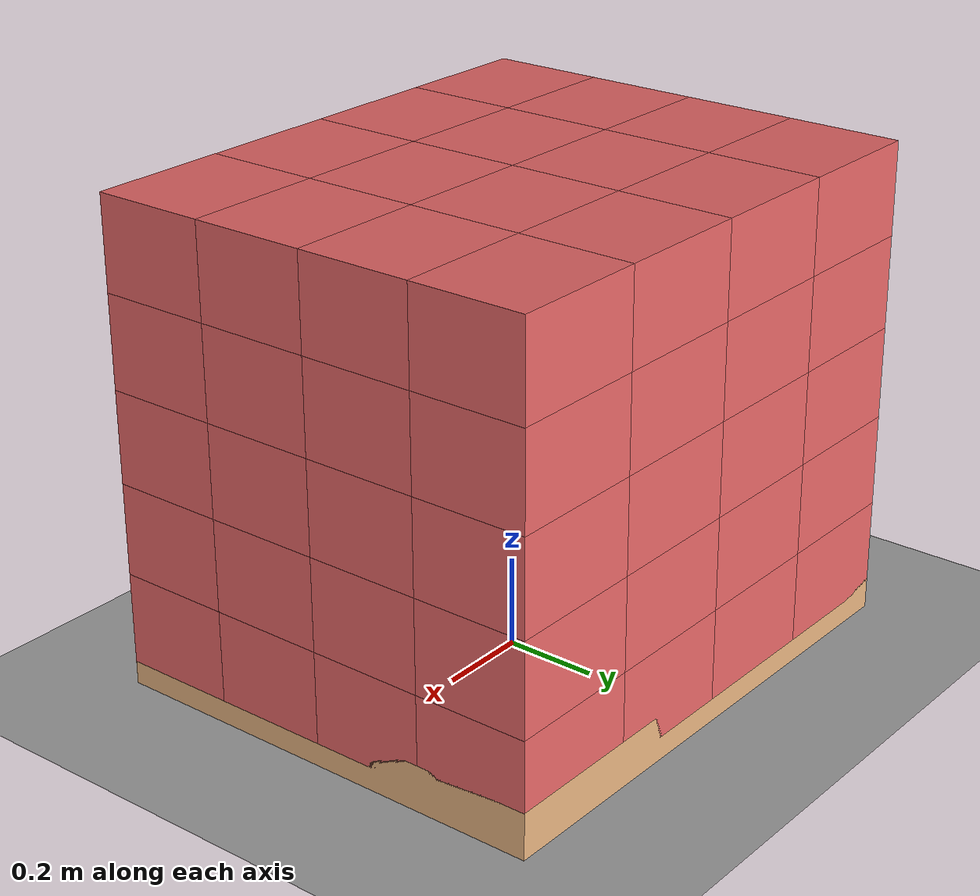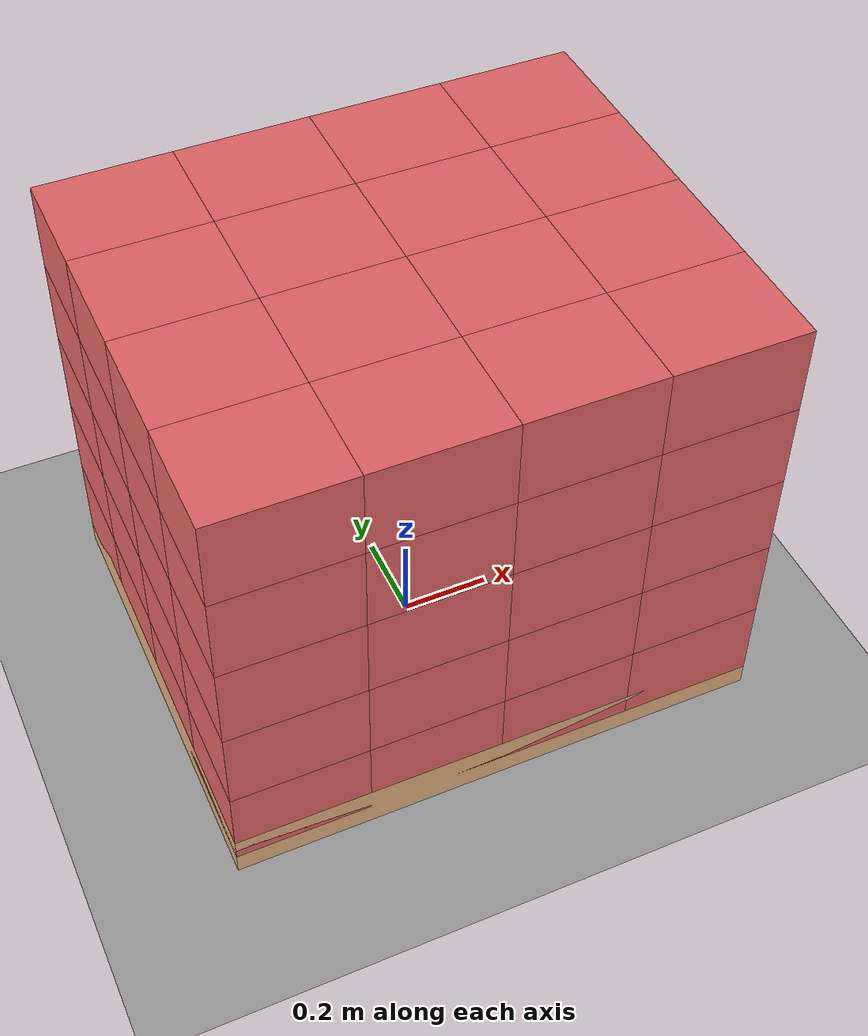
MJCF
<?xml version="1.0" ?>
<mujoco model="pallet_bricks_column">
  <!-- derive inertia from geometry -->
  <compiler angle="degree" inertiafromgeom="true"/>

  <!-- define textures and materials -->
  <asset>
    <!-- checkerboard texture -->
    <texture name="checker" type="2d" builtin="checker"
             rgb1="0.95 0.95 0.95" rgb2="0.3 0.3 0.3"
             width="512" height="512"/>
    <!-- floor uses checker -->
    <material name="floor_mat"
              texture="checker"
              texrepeat="10 10"
              specular="0.3"
              shininess="0.7"
              reflectance="0.2"/>
    <!-- bricks stay red -->
    <material name="brick_mat"
              rgba="0.9 0.4 0.4 1"
              specular="0.3"
              shininess="0.7"/>
    <!-- new light‑brown pallet -->
    <material name="pallet_mat"
              rgba="0.9 0.7 0.5 1"
              specular="0.3"
              shininess="0.7"/>
  </asset>

  <!-- physics options -->
  <option gravity="0 0 -9.81"/>

  <worldbody>
    <!-- renamed default camera -->
    <camera name="camera"
            pos="0 -12 8"
            euler="50 0 0"/>

    <!-- Add additional lights -->
    <light name="light1" pos="0 0 10" dir="0 0 -1" diffuse="0.8 0.8 0.8" specular="0.8 0.8 0.8"/>
    <light name="light2" pos="10 0 5" dir="-1 0 -0.5" diffuse="0.6 0.6 0.6" specular="0.6 0.6 0.6"/>
    <light name="light3" pos="-10 0 5" dir="1 0 -0.5" diffuse="0.6 0.6 0.6" specular="0.6 0.6 0.6"/>

    <!-- ground plane with checkerboard -->
    <geom name="floor"
          type="plane"
          pos="0 0 0"
          size="10 10 0.1"
          material="floor_mat"/>

    <body name="pallet"
          pos="0 0 0.05">
  <joint name="pallet_slide_x" type="slide" axis="1 0 0"/>
  <joint name="pallet_slide_y" type="slide" axis="0 1 0"/>
  <joint name="pallet_hinge_z" type="hinge" axis="0 0 1"/>
        <geom name="pallet_geom"
            type="box"
            size="0.6 0.5 0.05"
            density="1250"
            friction="2.0 2.0 0.002"
            material="pallet_mat"/>
    </body>

    <body name="brick_0_0_0" pos="-0.45 -0.375 0.15">
      <joint name="brick_0_0_free" type="free"/>
      <geom type="box" size="0.15 0.125 0.10"
            density="7935" friction="1.0 0.1 0.001"
            material="brick_mat"/>
    </body>
    <body name="brick_0_0_1" pos="-0.15 -0.375 0.15">
      <joint name="brick_0_1_free" type="free"/>
      <geom type="box" size="0.15 0.125 0.10"
            density="7935" friction="1.0 0.1 0.001"
            material="brick_mat"/>
    </body>
    <body name="brick_0_0_2" pos="0.15 -0.375 0.15">
      <joint name="brick_0_2_free" type="free"/>
      <geom type="box" size="0.15 0.125 0.10"
            density="7935" friction="1.0 0.1 0.001"
            material="brick_mat"/>
    </body>
    <body name="brick_0_0_3" pos="0.45 -0.375 0.15">
      <joint name="brick_0_3_free" type="free"/>
      <geom type="box" size="0.15 0.125 0.10"
            density="7935" friction="1.0 0.1 0.001"
            material="brick_mat"/>
    </body>
    <body name="brick_0_1_0" pos="-0.45 -0.125 0.15">
      <joint name="brick_0_4_free" type="free"/>
      <geom type="box" size="0.15 0.125 0.10"
            density="7935" friction="1.0 0.1 0.001"
            material="brick_mat"/>
    </body>
    <body name="brick_0_1_1" pos="-0.15 -0.125 0.15">
      <joint name="brick_0_5_free" type="free"/>
      <geom type="box" size="0.15 0.125 0.10"
            density="7935" friction="1.0 0.1 0.001"
            material="brick_mat"/>
    </body>
    <body name="brick_0_1_2" pos="0.15 -0.125 0.15">
      <joint name="brick_0_6_free" type="free"/>
      <geom type="box" size="0.15 0.125 0.10"
            density="7935" friction="1.0 0.1 0.001"
            material="brick_mat"/>
    </body>
    <body name="brick_0_1_3" pos="0.45 -0.125 0.15">
      <joint name="brick_0_7_free" type="free"/>
      <geom type="box" size="0.15 0.125 0.10"
            density="7935" friction="1.0 0.1 0.001"
            material="brick_mat"/>
    </body>
    <body name="brick_0_2_0" pos="-0.45 0.125 0.15">
      <joint name="brick_0_8_free" type="free"/>
      <geom type="box" size="0.15 0.125 0.10"
            density="7935" friction="1.0 0.1 0.001"
            material="brick_mat"/>
    </body>
    <body name="brick_0_2_1" pos="-0.15 0.125 0.15">
      <joint name="brick_0_9_free" type="free"/>
      <geom type="box" size="0.15 0.125 0.10"
            density="7935" friction="1.0 0.1 0.001"
            material="brick_mat"/>
    </body>
    <body name="brick_0_2_2" pos="0.15 0.125 0.15">
      <joint name="brick_0_10_free" type="free"/>
      <geom type="box" size="0.15 0.125 0.10"
            density="7935" friction="1.0 0.1 0.001"
            material="brick_mat"/>
    </body>
    <body name="brick_0_2_3" pos="0.45 0.125 0.15">
      <joint name="brick_0_11_free" type="free"/>
      <geom type="box" size="0.15 0.125 0.10"
            density="7935" friction="1.0 0.1 0.001"
            material="brick_mat"/>
    </body>
    <body name="brick_0_3_0" pos="-0.45 0.375 0.15">
      <joint name="brick_0_12_free" type="free"/>
      <geom type="box" size="0.15 0.125 0.10"
            density="7935" friction="1.0 0.1 0.001"
            material="brick_mat"/>
    </body>
    <body name="brick_0_3_1" pos="-0.15 0.375 0.15">
      <joint name="brick_0_13_free" type="free"/>
      <geom type="box" size="0.15 0.125 0.10"
            density="7935" friction="1.0 0.1 0.001"
            material="brick_mat"/>
    </body>
    <body name="brick_0_3_2" pos="0.15 0.375 0.15">
      <joint name="brick_0_14_free" type="free"/>
      <geom type="box" size="0.15 0.125 0.10"
            density="7935" friction="1.0 0.1 0.001"
            material="brick_mat"/>
    </body>
    <body name="brick_0_3_3" pos="0.45 0.375 0.15">
      <joint name="brick_0_15_free" type="free"/>
      <geom type="box" size="0.15 0.125 0.10"
            density="7935" friction="1.0 0.1 0.001"
            material="brick_mat"/>
    </body>

    <!-- Layer 1 -->
    <body name="brick_1_0_0" pos="-0.45 -0.375 0.35">
      <joint name="brick_1_0_free" type="free"/>
      <geom type="box" size="0.15 0.125 0.10"
            density="7935" friction="1.0 0.1 0.001"
            material="brick_mat"/>
    </body>
    <body name="brick_1_0_1" pos="-0.15 -0.375 0.35">
      <joint name="brick_1_1_free" type="free"/>
      <geom type="box" size="0.15 0.125 0.10"
            density="7935" friction="1.0 0.1 0.001"
            material="brick_mat"/>
    </body>
    <body name="brick_1_0_2" pos="0.15 -0.375 0.35">
      <joint name="brick_1_2_free" type="free"/>
      <geom type="box" size="0.15 0.125 0.10"
            density="7935" friction="1.0 0.1 0.001"
            material="brick_mat"/>
    </body>
    <body name="brick_1_0_3" pos="0.45 -0.375 0.35">
      <joint name="brick_1_3_free" type="free"/>
      <geom type="box" size="0.15 0.125 0.10"
            density="7935" friction="1.0 0.1 0.001"
            material="brick_mat"/>
    </body>
    <body name="brick_1_1_0" pos="-0.45 -0.125 0.35">
      <joint name="brick_1_4_free" type="free"/>
      <geom type="box" size="0.15 0.125 0.10"
            density="7935" friction="1.0 0.1 0.001"
            material="brick_mat"/>
    </body>
    <body name="brick_1_1_1" pos="-0.15 -0.125 0.35">
      <joint name="brick_1_5_free" type="free"/>
      <geom type="box" size="0.15 0.125 0.10"
            density="7935" friction="1.0 0.1 0.001"
            material="brick_mat"/>
    </body>
    <body name="brick_1_1_2" pos="0.15 -0.125 0.35">
      <joint name="brick_1_6_free" type="free"/>
      <geom type="box" size="0.15 0.125 0.10"
            density="7935" friction="1.0 0.1 0.001"
            material="brick_mat"/>
    </body>
    <body name="brick_1_1_3" pos="0.45 -0.125 0.35">
      <joint name="brick_1_7_free" type="free"/>
      <geom type="box" size="0.15 0.125 0.10"
            density="7935" friction="1.0 0.1 0.001"
            material="brick_mat"/>
    </body>
    <body name="brick_1_2_0" pos="-0.45 0.125 0.35">
      <joint name="brick_1_8_free" type="free"/>
      <geom type="box" size="0.15 0.125 0.10"
            density="7935" friction="1.0 0.1 0.001"
            material="brick_mat"/>
    </body>
    <body name="brick_1_2_1" pos="-0.15 0.125 0.35">
      <joint name="brick_1_9_free" type="free"/>
      <geom type="box" size="0.15 0.125 0.10"
            density="7935" friction="1.0 0.1 0.001"
            material="brick_mat"/>
    </body>
    <body name="brick_1_2_2" pos="0.15 0.125 0.35">
      <joint name="brick_1_10_free" type="free"/>
      <geom type="box" size="0.15 0.125 0.10"
            density="7935" friction="1.0 0.1 0.001"
            material="brick_mat"/>
    </body>
    <body name="brick_1_2_3" pos="0.45 0.125 0.35">
      <joint name="brick_1_11_free" type="free"/>
      <geom type="box" size="0.15 0.125 0.10"
            density="7935" friction="1.0 0.1 0.001"
            material="brick_mat"/>
    </body>
    <body name="brick_1_3_0" pos="-0.45 0.375 0.35">
      <joint name="brick_1_12_free" type="free"/>
      <geom type="box" size="0.15 0.125 0.10"
            density="7935" friction="1.0 0.1 0.001"
            material="brick_mat"/>
    </body>
    <body name="brick_1_3_1" pos="-0.15 0.375 0.35">
      <joint name="brick_1_13_free" type="free"/>
      <geom type="box" size="0.15 0.125 0.10"
            density="7935" friction="1.0 0.1 0.001"
            material="brick_mat"/>
    </body>
    <body name="brick_1_3_2" pos="0.15 0.375 0.35">
      <joint name="brick_1_14_free" type="free"/>
      <geom type="box" size="0.15 0.125 0.10"
            density="7935" friction="1.0 0.1 0.001"
            material="brick_mat"/>
    </body>
    <body name="brick_1_3_3" pos="0.45 0.375 0.35">
      <joint name="brick_1_15_free" type="free"/>
      <geom type="box" size="0.15 0.125 0.10"
            density="7935" friction="1.0 0.1 0.001"
            material="brick_mat"/>
    </body>

    <!-- Layer 2 -->
    <body name="brick_2_0_0" pos="-0.45 -0.375 0.55">
      <joint name="brick_2_0_free" type="free"/>
      <geom type="box" size="0.15 0.125 0.10"
            density="7935" friction="1.0 0.1 0.001"
            material="brick_mat"/>
    </body>
    <body name="brick_2_0_1" pos="-0.15 -0.375 0.55">
      <joint name="brick_2_1_free" type="free"/>
      <geom type="box" size="0.15 0.125 0.10"
            density="7935" friction="1.0 0.1 0.001"
            material="brick_mat"/>
    </body>
    <body name="brick_2_0_2" pos="0.15 -0.375 0.55">
      <joint name="brick_2_2_free" type="free"/>
      <geom type="box" size="0.15 0.125 0.10"
            density="7935" friction="1.0 0.1 0.001"
            material="brick_mat"/>
    </body>
    <body name="brick_2_0_3" pos="0.45 -0.375 0.55">
      <joint name="brick_2_3_free" type="free"/>
      <geom type="box" size="0.15 0.125 0.10"
            density="7935" friction="1.0 0.1 0.001"
            material="brick_mat"/>
    </body>
    <body name="brick_2_1_0" pos="-0.45 -0.125 0.55">
      <joint name="brick_2_4_free" type="free"/>
      <geom type="box" size="0.15 0.125 0.10"
            density="7935" friction="1.0 0.1 0.001"
            material="brick_mat"/>
    </body>
    <body name="brick_2_1_1" pos="-0.15 -0.125 0.55">
      <joint name="brick_2_5_free" type="free"/>
      <geom type="box" size="0.15 0.125 0.10"
            density="7935" friction="1.0 0.1 0.001"
            material="brick_mat"/>
    </body>
    <body name="brick_2_1_2" pos="0.15 -0.125 0.55">
      <joint name="brick_2_6_free" type="free"/>
      <geom type="box" size="0.15 0.125 0.10"
            density="7935" friction="1.0 0.1 0.001"
            material="brick_mat"/>
    </body>
    <body name="brick_2_1_3" pos="0.45 -0.125 0.55">
      <joint name="brick_2_7_free" type="free"/>
      <geom type="box" size="0.15 0.125 0.10"
            density="7935" friction="1.0 0.1 0.001"
            material="brick_mat"/>
    </body>
    <body name="brick_2_2_0" pos="-0.45 0.125 0.55">
      <joint name="brick_2_8_free" type="free"/>
      <geom type="box" size="0.15 0.125 0.10"
            density="7935" friction="1.0 0.1 0.001"
            material="brick_mat"/>
    </body>
    <body name="brick_2_2_1" pos="-0.15 0.125 0.55">
      <joint name="brick_2_9_free" type="free"/>
      <geom type="box" size="0.15 0.125 0.10"
            density="7935" friction="1.0 0.1 0.001"
            material="brick_mat"/>
    </body>
    <body name="brick_2_2_2" pos="0.15 0.125 0.55">
      <joint name="brick_2_10_free" type="free"/>
      <geom type="box" size="0.15 0.125 0.10"
            density="7935" friction="1.0 0.1 0.001"
            material="brick_mat"/>
    </body>
    <body name="brick_2_2_3" pos="0.45 0.125 0.55">
      <joint name="brick_2_11_free" type="free"/>
      <geom type="box" size="0.15 0.125 0.10"
            density="7935" friction="1.0 0.1 0.001"
            material="brick_mat"/>
    </body>
    <body name="brick_2_3_0" pos="-0.45 0.375 0.55">
      <joint name="brick_2_12_free" type="free"/>
      <geom type="box" size="0.15 0.125 0.10"
            density="7935" friction="1.0 0.1 0.001"
            material="brick_mat"/>
    </body>
    <body name="brick_2_3_1" pos="-0.15 0.375 0.55">
      <joint name="brick_2_13_free" type="free"/>
      <geom type="box" size="0.15 0.125 0.10"
            density="7935" friction="1.0 0.1 0.001"
            material="brick_mat"/>
    </body>
    <body name="brick_2_3_2" pos="0.15 0.375 0.55">
      <joint name="brick_2_14_free" type="free"/>
      <geom type="box" size="0.15 0.125 0.10"
            density="7935" friction="1.0 0.1 0.001"
            material="brick_mat"/>
    </body>
    <body name="brick_2_3_3" pos="0.45 0.375 0.55">
      <joint name="brick_2_15_free" type="free"/>
      <geom type="box" size="0.15 0.125 0.10"
            density="7935" friction="1.0 0.1 0.001"
            material="brick_mat"/>
    </body>

    <!-- Layer 3 -->
    <body name="brick_3_0_0" pos="-0.45 -0.375 0.75">
      <joint name="brick_3_0_free" type="free"/>
      <geom type="box" size="0.15 0.125 0.10"
            density="7935" friction="1.0 0.1 0.001"
            material="brick_mat"/>
    </body>
    <body name="brick_3_0_1" pos="-0.15 -0.375 0.75">
      <joint name="brick_3_1_free" type="free"/>
      <geom type="box" size="0.15 0.125 0.10"
            density="7935" friction="1.0 0.1 0.001"
            material="brick_mat"/>
    </body>
    <body name="brick_3_0_2" pos="0.15 -0.375 0.75">
      <joint name="brick_3_2_free" type="free"/>
      <geom type="box" size="0.15 0.125 0.10"
            density="7935" friction="1.0 0.1 0.001"
            material="brick_mat"/>
    </body>
    <body name="brick_3_0_3" pos="0.45 -0.375 0.75">
      <joint name="brick_3_3_free" type="free"/>
      <geom type="box" size="0.15 0.125 0.10"
            density="7935" friction="1.0 0.1 0.001"
            material="brick_mat"/>
    </body>
    <body name="brick_3_1_0" pos="-0.45 -0.125 0.75">
      <joint name="brick_3_4_free" type="free"/>
      <geom type="box" size="0.15 0.125 0.10"
            density="7935" friction="1.0 0.1 0.001"
            material="brick_mat"/>
    </body>
    <body name="brick_3_1_1" pos="-0.15 -0.125 0.75">
      <joint name="brick_3_5_free" type="free"/>
      <geom type="box" size="0.15 0.125 0.10"
            density="7935" friction="1.0 0.1 0.001"
            material="brick_mat"/>
    </body>
    <body name="brick_3_1_2" pos="0.15 -0.125 0.75">
      <joint name="brick_3_6_free" type="free"/>
      <geom type="box" size="0.15 0.125 0.10"
            density="7935" friction="1.0 0.1 0.001"
            material="brick_mat"/>
    </body>
    <body name="brick_3_1_3" pos="0.45 -0.125 0.75">
      <joint name="brick_3_7_free" type="free"/>
      <geom type="box" size="0.15 0.125 0.10"
            density="7935" friction="1.0 0.1 0.001"
            material="brick_mat"/>
    </body>
    <body name="brick_3_2_0" pos="-0.45 0.125 0.75">
      <joint name="brick_3_8_free" type="free"/>
      <geom type="box" size="0.15 0.125 0.10"
            density="7935" friction="1.0 0.1 0.001"
            material="brick_mat"/>
    </body>
    <body name="brick_3_2_1" pos="-0.15 0.125 0.75">
      <joint name="brick_3_9_free" type="free"/>
      <geom type="box" size="0.15 0.125 0.10"
            density="7935" friction="1.0 0.1 0.001"
            material="brick_mat"/>
    </body>
    <body name="brick_3_2_2" pos="0.15 0.125 0.75">
      <joint name="brick_3_10_free" type="free"/>
      <geom type="box" size="0.15 0.125 0.10"
            density="7935" friction="1.0 0.1 0.001"
            material="brick_mat"/>
    </body>
    <body name="brick_3_2_3" pos="0.45 0.125 0.75">
      <joint name="brick_3_11_free" type="free"/>
      <geom type="box" size="0.15 0.125 0.10"
            density="7935" friction="1.0 0.1 0.001"
            material="brick_mat"/>
    </body>
    <body name="brick_3_3_0" pos="-0.45 0.375 0.75">
      <joint name="brick_3_12_free" type="free"/>
      <geom type="box" size="0.15 0.125 0.10"
            density="7935" friction="1.0 0.1 0.001"
            material="brick_mat"/>
    </body>
    <body name="brick_3_3_1" pos="-0.15 0.375 0.75">
      <joint name="brick_3_13_free" type="free"/>
      <geom type="box" size="0.15 0.125 0.10"
            density="7935" friction="1.0 0.1 0.001"
            material="brick_mat"/>
    </body>
    <body name="brick_3_3_2" pos="0.15 0.375 0.75">
      <joint name="brick_3_14_free" type="free"/>
      <geom type="box" size="0.15 0.125 0.10"
            density="7935" friction="1.0 0.1 0.001"
            material="brick_mat"/>
    </body>
    <body name="brick_3_3_3" pos="0.45 0.375 0.75">
      <joint name="brick_3_15_free" type="free"/>
      <geom type="box" size="0.15 0.125 0.10"
            density="7935" friction="1.0 0.1 0.001"
            material="brick_mat"/>
    </body>

    <!-- Layer 4 -->
    <body name="brick_4_0_0" pos="-0.45 -0.375 0.95">
      <joint name="brick_4_0_free" type="free"/>
      <geom type="box" size="0.15 0.125 0.10"
            density="7935" friction="1.0 0.1 0.001"
            material="brick_mat"/>
    </body>
    <body name="brick_4_0_1" pos="-0.15 -0.375 0.95">
      <joint name="brick_4_1_free" type="free"/>
      <geom type="box" size="0.15 0.125 0.10"
            density="7935" friction="1.0 0.1 0.001"
            material="brick_mat"/>
    </body>
    <body name="brick_4_0_2" pos="0.15 -0.375 0.95">
      <joint name="brick_4_2_free" type="free"/>
      <geom type="box" size="0.15 0.125 0.10"
            density="7935" friction="1.0 0.1 0.001"
            material="brick_mat"/>
    </body>
    <body name="brick_4_0_3" pos="0.45 -0.375 0.95">
      <joint name="brick_4_3_free" type="free"/>
      <geom type="box" size="0.15 0.125 0.10"
            density="7935" friction="1.0 0.1 0.001"
            material="brick_mat"/>
    </body>
    <body name="brick_4_1_0" pos="-0.45 -0.125 0.95">
      <joint name="brick_4_4_free" type="free"/>
      <geom type="box" size="0.15 0.125 0.10"
            density="7935" friction="1.0 0.1 0.001"
            material="brick_mat"/>
    </body>
    <body name="brick_4_1_1" pos="-0.15 -0.125 0.95">
      <joint name="brick_4_5_free" type="free"/>
      <geom type="box" size="0.15 0.125 0.10"
            density="7935" friction="1.0 0.1 0.001"
            material="brick_mat"/>
    </body>
    <body name="brick_4_1_2" pos="0.15 -0.125 0.95">
      <joint name="brick_4_6_free" type="free"/>
      <geom type="box" size="0.15 0.125 0.10"
            density="7935" friction="1.0 0.1 0.001"
            material="brick_mat"/>
    </body>
    <body name="brick_4_1_3" pos="0.45 -0.125 0.95">
      <joint name="brick_4_7_free" type="free"/>
      <geom type="box" size="0.15 0.125 0.10"
            density="7935" friction="1.0 0.1 0.001"
            material="brick_mat"/>
    </body>
    <body name="brick_4_2_0" pos="-0.45 0.125 0.95">
      <joint name="brick_4_8_free" type="free"/>
      <geom type="box" size="0.15 0.125 0.10"
            density="7935" friction="1.0 0.1 0.001"
            material="brick_mat"/>
    </body>
    <body name="brick_4_2_1" pos="-0.15 0.125 0.95">
      <joint name="brick_4_9_free" type="free"/>
      <geom type="box" size="0.15 0.125 0.10"
            density="7935" friction="1.0 0.1 0.001"
            material="brick_mat"/>
    </body>
    <body name="brick_4_2_2" pos="0.15 0.125 0.95">
      <joint name="brick_4_10_free" type="free"/>
      <geom type="box" size="0.15 0.125 0.10"
            density="7935" friction="1.0 0.1 0.001"
            material="brick_mat"/>
    </body>
    <body name="brick_4_2_3" pos="0.45 0.125 0.95">
      <joint name="brick_4_11_free" type="free"/>
      <geom type="box" size="0.15 0.125 0.10"
            density="7935" friction="1.0 0.1 0.001"
            material="brick_mat"/>
    </body>
    <body name="brick_4_3_0" pos="-0.45 0.375 0.95">
      <joint name="brick_4_12_free" type="free"/>
      <geom type="box" size="0.15 0.125 0.10"
            density="7935" friction="1.0 0.1 0.001"
            material="brick_mat"/>
    </body>
    <body name="brick_4_3_1" pos="-0.15 0.375 0.95">
      <joint name="brick_4_13_free" type="free"/>
      <geom type="box" size="0.15 0.125 0.10"
            density="7935" friction="1.0 0.1 0.001"
            material="brick_mat"/>
    </body>
    <body name="brick_4_3_2" pos="0.15 0.375 0.95">
      <joint name="brick_4_14_free" type="free"/>
      <geom type="box" size="0.15 0.125 0.10"
            density="7935" friction="1.0 0.1 0.001"
            material="brick_mat"/>
    </body>
    <body name="brick_4_3_3" pos="0.45 0.375 0.95">
      <joint name="brick_4_15_free" type="free"/>
      <geom type="box" size="0.15 0.125 0.10"
            density="7935" friction="1.0 0.1 0.001"
            material="brick_mat"/>
    </body>
  </worldbody>

<actuator>
  <!-- drive X -->
  <position
    joint="pallet_slide_x"
    ctrllimited="true"
    ctrlrange="-inf inf"
    kp="500"/>
  <!-- drive Y -->
  <position
    joint="pallet_slide_y"
    ctrllimited="true"
    ctrlrange="-inf inf"
    kp="500"/>
  <!-- drive yaw -->
  <position
    joint="pallet_hinge_z"
    ctrllimited="true"
    ctrlrange="-inf inf"
    kp="100"/>
</actuator>

</mujoco>
